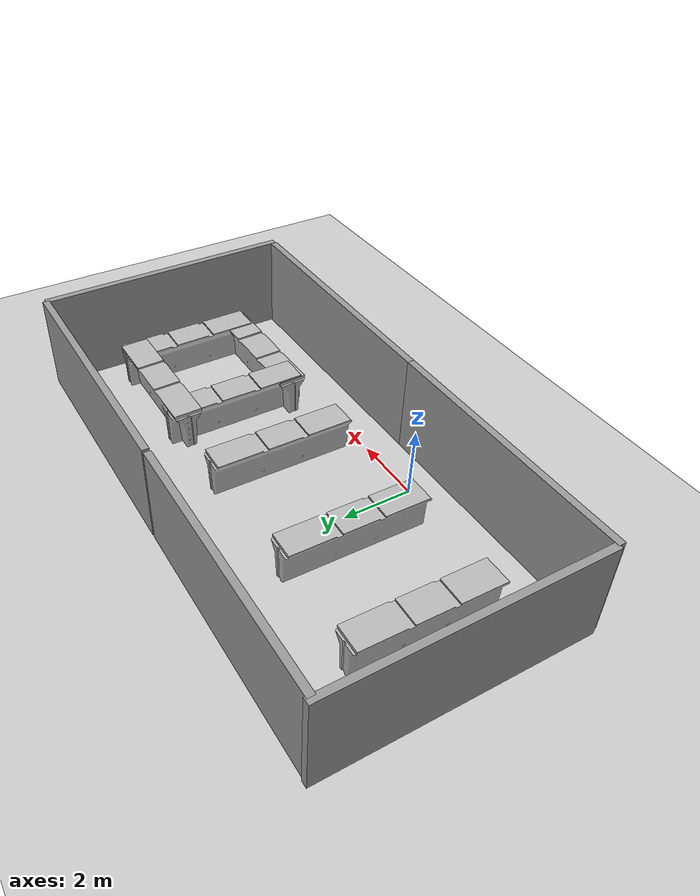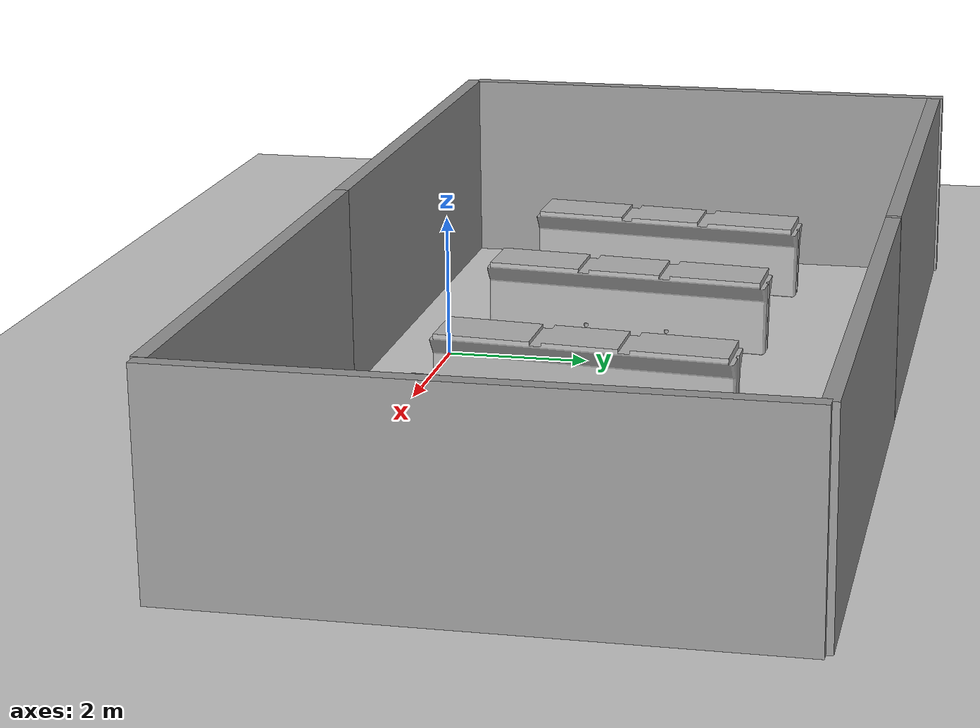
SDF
<sdf version="1.6">
 <world name="default">
  <light name="sun" type="directional">
   <pose>0 0 10 0 -0 0</pose>
   <diffuse>0.8 0.8 0.8 1</diffuse>
   <specular>0.1 0.1 0.1 1</specular>
   <attenuation>
    <range>1000</range>
    <constant>0.9</constant>
    <linear>0.01</linear>
    <quadratic>0.001</quadratic>
   </attenuation>
   <direction>-0.5 0.5 -1</direction>
  </light>
  <model name="ground_plane">
   <static>1</static>
   <link name="link">
    <collision name="collision">
     <geometry><plane><normal>0 0 1</normal><size>100 100</size></plane></geometry>
     <surface><friction><ode><mu>100</mu><mu2>50</mu2></ode></friction></surface>
    </collision>
    <visual name="visual">
     <cast_shadows>0</cast_shadows>
     <geometry><plane><normal>0 0 1</normal><size>100 100</size></plane></geometry>
     <material>
      <script><uri>file://media/materials/scripts/gazebo.material</uri><name>Gazebo/Grey</name></script>
     </material>
    </visual>
   </link>
  </model>
  <gravity>0 0 -9.8</gravity>
  <magnetic_field>6e-06 2.3e-05 -4.2e-05</magnetic_field>
  <atmosphere type="adiabatic"/>
  <physics name="default_physics" default="0" type="ode">
   <max_step_size>0.001</max_step_size>
   <real_time_factor>1</real_time_factor>
   <real_time_update_rate>1000</real_time_update_rate>
  </physics>
  <scene><ambient>0.4 0.4 0.4 1</ambient><background>0.7 0.7 0.7 1</background><shadows>1</shadows></scene>
  <spherical_coordinates>
   <surface_model>EARTH_WGS84</surface_model>
   <latitude_deg>0</latitude_deg>
   <longitude_deg>0</longitude_deg>
   <elevation>0</elevation>
   <heading_deg>0</heading_deg>
  </spherical_coordinates>
  <model name="Untitled108">
   <model name="grey_wall">
    <static>1</static>
    <link name="link">
     <pose>0 0 1.4 0 -0 0</pose>
     <collision name="collision"><geometry><box><size>7.5 0.2 2.8</size></box></geometry></collision>
     <visual name="visual">
      <cast_shadows>0</cast_shadows>
      <geometry><box><size>7.5 0.2 2.8</size></box></geometry>
      <material>
       <script>
        <uri>model://grey_wall/materials/scripts</uri>
        <uri>model://grey_wall/materials/textures</uri>
        <name>vrc/grey_wall</name>
       </script>
      </material>
     </visual>
    </link>
    <pose>-4.64341 3.78447 -0.627685 0 -0 0</pose>
   </model>
   <model name="grey_wall_0">
    <static>1</static>
    <link name="link">
     <pose>0 0 1.4 0 -0 0</pose>
     <collision name="collision"><geometry><box><size>7.5 0.2 2.8</size></box></geometry></collision>
     <visual name="visual">
      <cast_shadows>0</cast_shadows>
      <geometry><box><size>7.5 0.2 2.8</size></box></geometry>
      <material>
       <script>
        <uri>model://grey_wall/materials/scripts</uri>
        <uri>model://grey_wall/materials/textures</uri>
        <name>vrc/grey_wall</name>
       </script>
      </material>
     </visual>
    </link>
    <pose>2.94227 3.78678 -0.627685 0 -0 0</pose>
   </model>
   <model name="grey_wall_2">
    <static>1</static>
    <link name="link">
     <pose>0 0 1.4 0 -0 0</pose>
     <collision name="collision"><geometry><box><size>7.5 0.2 2.8</size></box></geometry></collision>
     <visual name="visual">
      <cast_shadows>0</cast_shadows>
      <geometry><box><size>7.5 0.2 2.8</size></box></geometry>
      <material>
       <script>
        <uri>model://grey_wall/materials/scripts</uri>
        <uri>model://grey_wall/materials/textures</uri>
        <name>vrc/grey_wall</name>
       </script>
      </material>
     </visual>
    </link>
    <pose>2.86289 -3.64288 -0.627685 0 -0 0</pose>
   </model>
   <model name="grey_wall_2_clone">
    <static>1</static>
    <link name="link">
     <pose>0 0 1.4 0 -0 0</pose>
     <collision name="collision"><geometry><box><size>7.5 0.2 2.8</size></box></geometry></collision>
     <visual name="visual">
      <cast_shadows>0</cast_shadows>
      <geometry><box><size>7.5 0.2 2.8</size></box></geometry>
      <material>
       <script>
        <uri>model://grey_wall/materials/scripts</uri>
        <uri>model://grey_wall/materials/textures</uri>
        <name>vrc/grey_wall</name>
       </script>
      </material>
     </visual>
    </link>
    <pose>-4.63814 -3.64288 -0.627685 0 -0 0</pose>
   </model>
   <model name="grey_wall_3">
    <static>1</static>
    <link name="link">
     <pose>0 0 1.4 0 -0 0</pose>
     <collision name="collision"><geometry><box><size>7.5 0.2 2.8</size></box></geometry></collision>
     <visual name="visual">
      <cast_shadows>0</cast_shadows>
      <geometry><box><size>7.5 0.2 2.8</size></box></geometry>
      <material>
       <script>
        <uri>model://grey_wall/materials/scripts</uri>
        <uri>model://grey_wall/materials/textures</uri>
        <name>vrc/grey_wall</name>
       </script>
      </material>
     </visual>
    </link>
    <pose>-8.40217 0.170391 -0.627685 0 0 -1.56347</pose>
   </model>
   <model name="grey_wall_4">
    <static>1</static>
    <link name="link">
     <pose>0 0 1.4 0 -0 0</pose>
     <collision name="collision"><geometry><box><size>7.5 0.2 2.8</size></box></geometry></collision>
     <visual name="visual">
      <cast_shadows>0</cast_shadows>
      <geometry><box><size>7.5 0.2 2.8</size></box></geometry>
      <material>
       <script>
        <uri>model://grey_wall/materials/scripts</uri>
        <uri>model://grey_wall/materials/textures</uri>
        <name>vrc/grey_wall</name>
       </script>
      </material>
     </visual>
    </link>
    <pose>6.71295 0.051568 -0.627685 0 0 -1.56832</pose>
   </model>
   <model name="jersey_barrier">
    <static>1</static>
    <link name="link">
     <visual name="visual">
      <geometry><mesh><uri>model://jersey_barrier/meshes/jersey_barrier.dae</uri></mesh></geometry>
     </visual>
     <collision name="upright">
      <pose>0 0 0.5715 0 -0 0</pose>
      <geometry><box><size>4.06542 0.3063 1.143</size></box></geometry>
     </collision>
     <collision name="base">
      <pose>0 0 0.032258 0 -0 0</pose>
      <geometry><box><size>4.06542 0.8107 0.064516</size></box></geometry>
     </collision>
     <collision name="base2">
      <pose>0 0 0.1 0 -0 0</pose>
      <geometry><box><size>4.06542 0.65 0.1</size></box></geometry>
     </collision>
     <collision name="base3">
      <pose>0 0 0.2 0 -0 0</pose>
      <geometry><box><size>4.06542 0.5 0.1</size></box></geometry>
     </collision>
     <collision name="left-angle">
      <pose>0 -0.224 0.2401 0.9 -0 0</pose>
      <geometry><box><size>4.06542 0.5 0.064516</size></box></geometry>
     </collision>
     <collision name="right-angle">
      <pose>0 0.224 0.2401 -0.9 0 0</pose>
      <geometry><box><size>4.06542 0.5 0.064516</size></box></geometry>
     </collision>
    </link>
    <pose>2.33946 0.010296 0.538011 3.14034 -0.020404 -1.59234</pose>
   </model>
   <model name="jersey_barrier_clone">
    <static>1</static>
    <link name="link">
     <visual name="visual">
      <geometry><mesh><uri>model://jersey_barrier/meshes/jersey_barrier.dae</uri></mesh></geometry>
     </visual>
     <collision name="upright">
      <pose>0 0 0.5715 0 -0 0</pose>
      <geometry><box><size>4.06542 0.3063 1.143</size></box></geometry>
     </collision>
     <collision name="base">
      <pose>0 0 0.032258 0 -0 0</pose>
      <geometry><box><size>4.06542 0.8107 0.064516</size></box></geometry>
     </collision>
     <collision name="base2">
      <pose>0 0 0.1 0 -0 0</pose>
      <geometry><box><size>4.06542 0.65 0.1</size></box></geometry>
     </collision>
     <collision name="base3">
      <pose>0 0 0.2 0 -0 0</pose>
      <geometry><box><size>4.06542 0.5 0.1</size></box></geometry>
     </collision>
     <collision name="left-angle">
      <pose>0 -0.224 0.2401 0.9 -0 0</pose>
      <geometry><box><size>4.06542 0.5 0.064516</size></box></geometry>
     </collision>
     <collision name="right-angle">
      <pose>0 0.224 0.2401 -0.9 0 0</pose>
      <geometry><box><size>4.06542 0.5 0.064516</size></box></geometry>
     </collision>
    </link>
    <pose>3.8385 -1.64288 0.538015 3.12122 0.001695 0</pose>
   </model>
   <model name="jersey_barrier_clone_0">
    <static>1</static>
    <link name="link">
     <visual name="visual">
      <geometry><mesh><uri>model://jersey_barrier/meshes/jersey_barrier.dae</uri></mesh></geometry>
     </visual>
     <collision name="upright">
      <pose>0 0 0.5715 0 -0 0</pose>
      <geometry><box><size>4.06542 0.3063 1.143</size></box></geometry>
     </collision>
     <collision name="base">
      <pose>0 0 0.032258 0 -0 0</pose>
      <geometry><box><size>4.06542 0.8107 0.064516</size></box></geometry>
     </collision>
     <collision name="base2">
      <pose>0 0 0.1 0 -0 0</pose>
      <geometry><box><size>4.06542 0.65 0.1</size></box></geometry>
     </collision>
     <collision name="base3">
      <pose>0 0 0.2 0 -0 0</pose>
      <geometry><box><size>4.06542 0.5 0.1</size></box></geometry>
     </collision>
     <collision name="left-angle">
      <pose>0 -0.224 0.2401 0.9 -0 0</pose>
      <geometry><box><size>4.06542 0.5 0.064516</size></box></geometry>
     </collision>
     <collision name="right-angle">
      <pose>0 0.224 0.2401 -0.9 0 0</pose>
      <geometry><box><size>4.06542 0.5 0.064516</size></box></geometry>
     </collision>
    </link>
    <pose>3.87955 1.60191 0.538015 3.12122 0.001695 0</pose>
   </model>
   <model name="jersey_barrier_clone_1">
    <static>1</static>
    <link name="link">
     <visual name="visual">
      <geometry><mesh><uri>model://jersey_barrier/meshes/jersey_barrier.dae</uri></mesh></geometry>
     </visual>
     <collision name="upright">
      <pose>0 0 0.5715 0 -0 0</pose>
      <geometry><box><size>4.06542 0.3063 1.143</size></box></geometry>
     </collision>
     <collision name="base">
      <pose>0 0 0.032258 0 -0 0</pose>
      <geometry><box><size>4.06542 0.8107 0.064516</size></box></geometry>
     </collision>
     <collision name="base2">
      <pose>0 0 0.1 0 -0 0</pose>
      <geometry><box><size>4.06542 0.65 0.1</size></box></geometry>
     </collision>
     <collision name="base3">
      <pose>0 0 0.2 0 -0 0</pose>
      <geometry><box><size>4.06542 0.5 0.1</size></box></geometry>
     </collision>
     <collision name="left-angle">
      <pose>0 -0.224 0.2401 0.9 -0 0</pose>
      <geometry><box><size>4.06542 0.5 0.064516</size></box></geometry>
     </collision>
     <collision name="right-angle">
      <pose>0 0.224 0.2401 -0.9 0 0</pose>
      <geometry><box><size>4.06542 0.5 0.064516</size></box></geometry>
     </collision>
    </link>
    <pose>5.4918 -0.017706 0.538015 3.14034 -0.020404 -1.59234</pose>
   </model>
   <model name="jersey_barrier_clone_2">
    <static>1</static>
    <link name="link">
     <visual name="visual">
      <geometry><mesh><uri>model://jersey_barrier/meshes/jersey_barrier.dae</uri></mesh></geometry>
     </visual>
     <collision name="upright">
      <pose>0 0 0.5715 0 -0 0</pose>
      <geometry><box><size>4.06542 0.3063 1.143</size></box></geometry>
     </collision>
     <collision name="base">
      <pose>0 0 0.032258 0 -0 0</pose>
      <geometry><box><size>4.06542 0.8107 0.064516</size></box></geometry>
     </collision>
     <collision name="base2">
      <pose>0 0 0.1 0 -0 0</pose>
      <geometry><box><size>4.06542 0.65 0.1</size></box></geometry>
     </collision>
     <collision name="base3">
      <pose>0 0 0.2 0 -0 0</pose>
      <geometry><box><size>4.06542 0.5 0.1</size></box></geometry>
     </collision>
     <collision name="left-angle">
      <pose>0 -0.224 0.2401 0.9 -0 0</pose>
      <geometry><box><size>4.06542 0.5 0.064516</size></box></geometry>
     </collision>
     <collision name="right-angle">
      <pose>0 0.224 0.2401 -0.9 0 0</pose>
      <geometry><box><size>4.06542 0.5 0.064516</size></box></geometry>
     </collision>
    </link>
    <pose>-0.107391 -0.129182 0.538015 3.14034 -0.020404 -1.59234</pose>
   </model>
   <model name="jersey_barrier_clone_3">
    <static>1</static>
    <link name="link">
     <visual name="visual">
      <geometry><mesh><uri>model://jersey_barrier/meshes/jersey_barrier.dae</uri></mesh></geometry>
     </visual>
     <collision name="upright">
      <pose>0 0 0.5715 0 -0 0</pose>
      <geometry><box><size>4.06542 0.3063 1.143</size></box></geometry>
     </collision>
     <collision name="base">
      <pose>0 0 0.032258 0 -0 0</pose>
      <geometry><box><size>4.06542 0.8107 0.064516</size></box></geometry>
     </collision>
     <collision name="base2">
      <pose>0 0 0.1 0 -0 0</pose>
      <geometry><box><size>4.06542 0.65 0.1</size></box></geometry>
     </collision>
     <collision name="base3">
      <pose>0 0 0.2 0 -0 0</pose>
      <geometry><box><size>4.06542 0.5 0.1</size></box></geometry>
     </collision>
     <collision name="left-angle">
      <pose>0 -0.224 0.2401 0.9 -0 0</pose>
      <geometry><box><size>4.06542 0.5 0.064516</size></box></geometry>
     </collision>
     <collision name="right-angle">
      <pose>0 0.224 0.2401 -0.9 0 0</pose>
      <geometry><box><size>4.06542 0.5 0.064516</size></box></geometry>
     </collision>
    </link>
    <pose>-3.63815 -0.201013 0.538015 3.14034 -0.020404 -1.59234</pose>
   </model>
   <model name="jersey_barrier_clone_4">
    <static>1</static>
    <link name="link">
     <visual name="visual">
      <geometry><mesh><uri>model://jersey_barrier/meshes/jersey_barrier.dae</uri></mesh></geometry>
     </visual>
     <collision name="upright">
      <pose>0 0 0.5715 0 -0 0</pose>
      <geometry><box><size>4.06542 0.3063 1.143</size></box></geometry>
     </collision>
     <collision name="base">
      <pose>0 0 0.032258 0 -0 0</pose>
      <geometry><box><size>4.06542 0.8107 0.064516</size></box></geometry>
     </collision>
     <collision name="base2">
      <pose>0 0 0.1 0 -0 0</pose>
      <geometry><box><size>4.06542 0.65 0.1</size></box></geometry>
     </collision>
     <collision name="base3">
      <pose>0 0 0.2 0 -0 0</pose>
      <geometry><box><size>4.06542 0.5 0.1</size></box></geometry>
     </collision>
     <collision name="left-angle">
      <pose>0 -0.224 0.2401 0.9 -0 0</pose>
      <geometry><box><size>4.06542 0.5 0.064516</size></box></geometry>
     </collision>
     <collision name="right-angle">
      <pose>0 0.224 0.2401 -0.9 0 0</pose>
      <geometry><box><size>4.06542 0.5 0.064516</size></box></geometry>
     </collision>
    </link>
    <pose>-6.63814 -0.128883 0.538015 3.14034 -0.020404 -1.59234</pose>
   </model>
   <static>0</static>
   <pose>2.63815 2.64288 0.627685 0 -0 0</pose>
  </model>
 </world>
</sdf>
